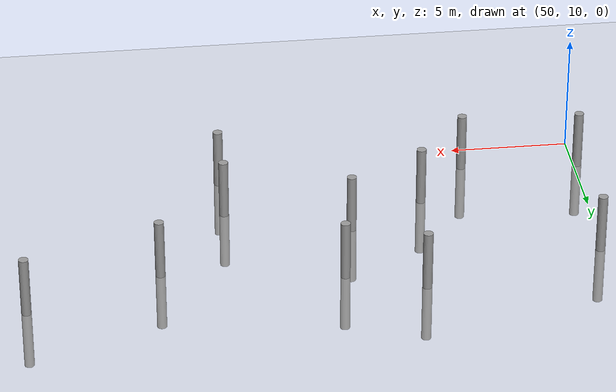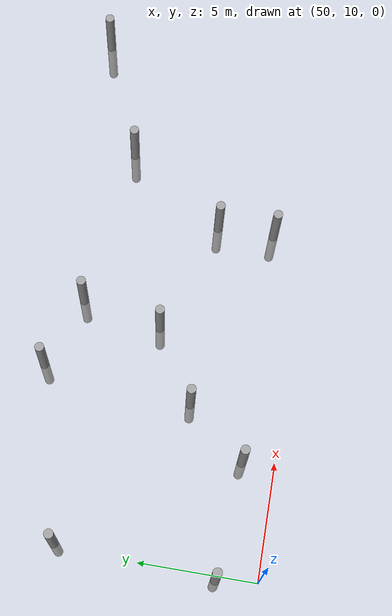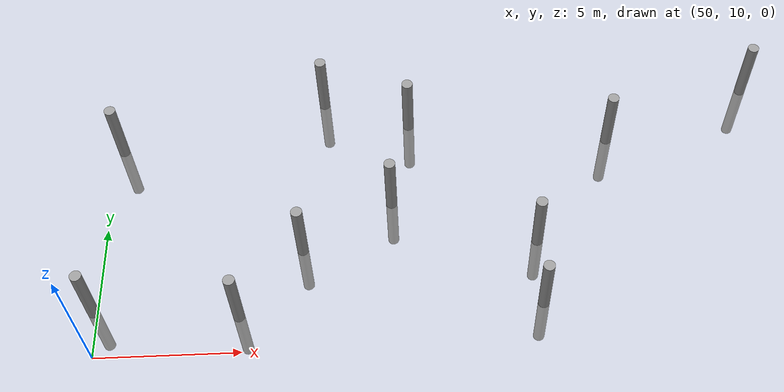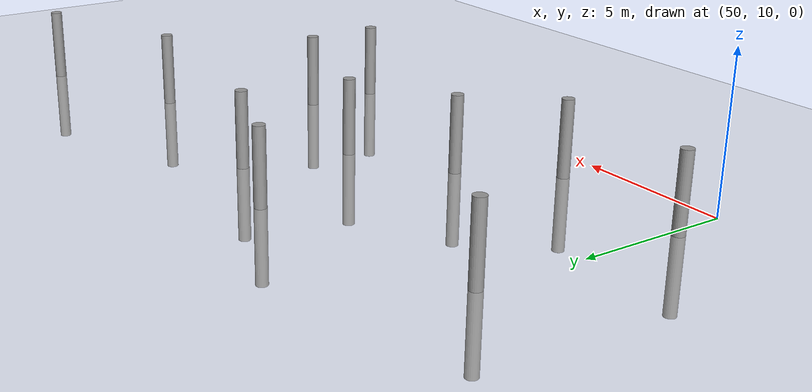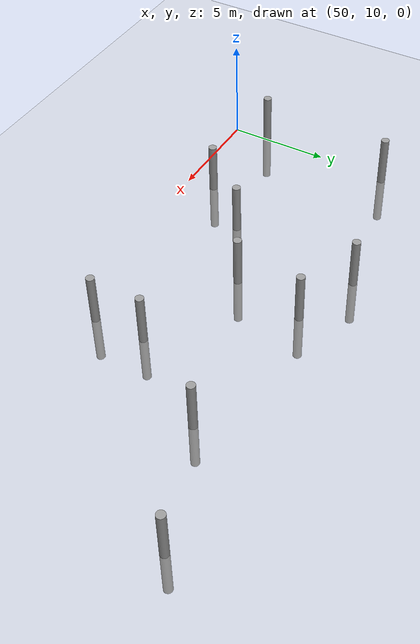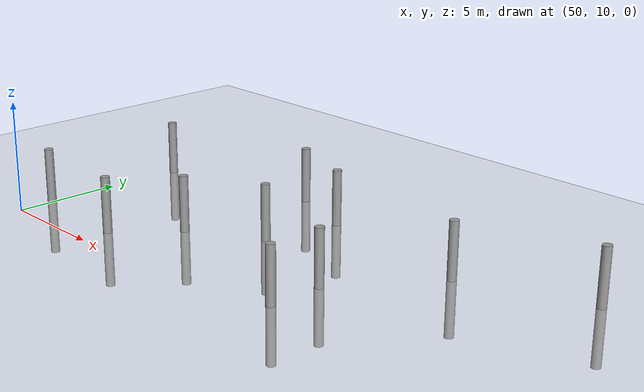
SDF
<sdf version="1.6">
 <world name="default">
  <model name="ground_plane">
   <static>1</static>
   <link name="link">
    <collision name="collision">
     <geometry><plane><normal>0 0 1</normal><size>100 100</size></plane></geometry>
     <surface><friction><ode><mu>100</mu><mu2>50</mu2></ode></friction></surface>
    </collision>
    <visual name="visual">
     <cast_shadows>0</cast_shadows>
     <geometry><plane><normal>0 0 1</normal><size>100 100</size></plane></geometry>
     <material>
      <script><uri>file://media/materials/scripts/gazebo.material</uri><name>Gazebo/Grey</name></script>
     </material>
    </visual>
   </link>
  </model>
  <model name="empty_pillars_3">
   <model name="empty_pillar_clone_13">
    <link name="link">
     <inertial>
      <mass>1</mass>
      <inertia><ixx>0.145833</ixx><ixy>0</ixy><ixz>0</ixz><iyy>0.145833</iyy><iyz>0</iyz><izz>0.125</izz></inertia>
     </inertial>
     <visual name="visual">
      <geometry><cylinder><radius>0.2</radius><length>5</length></cylinder></geometry>
      <material>
       <script><name>Gazebo/Grey</name><uri>file://media/materials/scripts/gazebo.material</uri></script>
       <shader type="vertex"><normal_map>__default__</normal_map></shader>
       <ambient>0.3 0.3 0.3 1</ambient>
       <diffuse>0.7 0.7 0.7 1</diffuse>
       <specular>0.01 0.01 0.01 1</specular>
       <emissive>0 0 0 1</emissive>
      </material>
     </visual>
     <collision name="collision">
      <geometry><cylinder><radius>0.05</radius><length>5</length></cylinder></geometry>
      <surface>
       <friction>
        <ode><mu>1</mu><mu2>1</mu2><fdir1>0 0 0</fdir1><slip1>0</slip1><slip2>0</slip2></ode>
        <torsional>
         <coefficient>1</coefficient>
         <patch_radius>0</patch_radius>
         <surface_radius>0</surface_radius>
         <use_patch_radius>1</use_patch_radius>
         <ode><slip>0</slip></ode>
        </torsional>
       </friction>
       <bounce><restitution_coefficient>0</restitution_coefficient><threshold>1e+06</threshold></bounce>
       <contact>
        <collide_without_contact>0</collide_without_contact>
        <collide_without_contact_bitmask>1</collide_without_contact_bitmask>
        <collide_bitmask>1</collide_bitmask>
        <ode>
         <soft_cfm>0</soft_cfm>
         <soft_erp>0.2</soft_erp>
         <kp>1e+13</kp>
         <kd>1</kd>
         <max_vel>0.01</max_vel>
         <min_depth>0</min_depth>
        </ode>
        <bullet>
         <split_impulse>1</split_impulse>
         <split_impulse_penetration_threshold>-0.01</split_impulse_penetration_threshold>
         <soft_cfm>0</soft_cfm>
         <soft_erp>0.2</soft_erp>
         <kp>1e+13</kp>
         <kd>1</kd>
        </bullet>
       </contact>
      </surface>
     </collision>
    </link>
    <static>0</static>
    <pose>-9.01464 -14.4259 0 0 -0 0</pose>
   </model>
   <model name="empty_pillar_clone_35">
    <link name="link">
     <inertial>
      <mass>1</mass>
      <inertia><ixx>0.145833</ixx><ixy>0</ixy><ixz>0</ixz><iyy>0.145833</iyy><iyz>0</iyz><izz>0.125</izz></inertia>
     </inertial>
     <visual name="visual">
      <geometry><cylinder><radius>0.2</radius><length>5</length></cylinder></geometry>
      <material>
       <script><name>Gazebo/Grey</name><uri>file://media/materials/scripts/gazebo.material</uri></script>
       <shader type="vertex"><normal_map>__default__</normal_map></shader>
       <ambient>0.3 0.3 0.3 1</ambient>
       <diffuse>0.7 0.7 0.7 1</diffuse>
       <specular>0.01 0.01 0.01 1</specular>
       <emissive>0 0 0 1</emissive>
      </material>
     </visual>
     <collision name="collision">
      <geometry><cylinder><radius>0.05</radius><length>5</length></cylinder></geometry>
      <surface>
       <friction>
        <ode><mu>1</mu><mu2>1</mu2><fdir1>0 0 0</fdir1><slip1>0</slip1><slip2>0</slip2></ode>
        <torsional>
         <coefficient>1</coefficient>
         <patch_radius>0</patch_radius>
         <surface_radius>0</surface_radius>
         <use_patch_radius>1</use_patch_radius>
         <ode><slip>0</slip></ode>
        </torsional>
       </friction>
       <bounce><restitution_coefficient>0</restitution_coefficient><threshold>1e+06</threshold></bounce>
       <contact>
        <collide_without_contact>0</collide_without_contact>
        <collide_without_contact_bitmask>1</collide_without_contact_bitmask>
        <collide_bitmask>1</collide_bitmask>
        <ode>
         <soft_cfm>0</soft_cfm>
         <soft_erp>0.2</soft_erp>
         <kp>1e+13</kp>
         <kd>1</kd>
         <max_vel>0.01</max_vel>
         <min_depth>0</min_depth>
        </ode>
        <bullet>
         <split_impulse>1</split_impulse>
         <split_impulse_penetration_threshold>-0.01</split_impulse_penetration_threshold>
         <soft_cfm>0</soft_cfm>
         <soft_erp>0.2</soft_erp>
         <kp>1e+13</kp>
         <kd>1</kd>
        </bullet>
       </contact>
      </surface>
     </collision>
    </link>
    <static>0</static>
    <pose>-19.4431 -17.0281 0 0 -0 0</pose>
   </model>
   <model name="empty_pillar_clone_37">
    <link name="link">
     <inertial>
      <mass>1</mass>
      <inertia><ixx>0.145833</ixx><ixy>0</ixy><ixz>0</ixz><iyy>0.145833</iyy><iyz>0</iyz><izz>0.125</izz></inertia>
     </inertial>
     <visual name="visual">
      <geometry><cylinder><radius>0.2</radius><length>5</length></cylinder></geometry>
      <material>
       <script><name>Gazebo/Grey</name><uri>file://media/materials/scripts/gazebo.material</uri></script>
       <shader type="vertex"><normal_map>__default__</normal_map></shader>
       <ambient>0.3 0.3 0.3 1</ambient>
       <diffuse>0.7 0.7 0.7 1</diffuse>
       <specular>0.01 0.01 0.01 1</specular>
       <emissive>0 0 0 1</emissive>
      </material>
     </visual>
     <collision name="collision">
      <geometry><cylinder><radius>0.05</radius><length>5</length></cylinder></geometry>
      <surface>
       <friction>
        <ode><mu>1</mu><mu2>1</mu2><fdir1>0 0 0</fdir1><slip1>0</slip1><slip2>0</slip2></ode>
        <torsional>
         <coefficient>1</coefficient>
         <patch_radius>0</patch_radius>
         <surface_radius>0</surface_radius>
         <use_patch_radius>1</use_patch_radius>
         <ode><slip>0</slip></ode>
        </torsional>
       </friction>
       <bounce><restitution_coefficient>0</restitution_coefficient><threshold>1e+06</threshold></bounce>
       <contact>
        <collide_without_contact>0</collide_without_contact>
        <collide_without_contact_bitmask>1</collide_without_contact_bitmask>
        <collide_bitmask>1</collide_bitmask>
        <ode>
         <soft_cfm>0</soft_cfm>
         <soft_erp>0.2</soft_erp>
         <kp>1e+13</kp>
         <kd>1</kd>
         <max_vel>0.01</max_vel>
         <min_depth>0</min_depth>
        </ode>
        <bullet>
         <split_impulse>1</split_impulse>
         <split_impulse_penetration_threshold>-0.01</split_impulse_penetration_threshold>
         <soft_cfm>0</soft_cfm>
         <soft_erp>0.2</soft_erp>
         <kp>1e+13</kp>
         <kd>1</kd>
        </bullet>
       </contact>
      </surface>
     </collision>
    </link>
    <static>0</static>
    <pose>-16.6035 -7.98282 0 0 -0 0</pose>
   </model>
   <model name="empty_pillar_clone_39">
    <link name="link">
     <inertial>
      <mass>1</mass>
      <inertia><ixx>0.145833</ixx><ixy>0</ixy><ixz>0</ixz><iyy>0.145833</iyy><iyz>0</iyz><izz>0.125</izz></inertia>
     </inertial>
     <visual name="visual">
      <geometry><cylinder><radius>0.2</radius><length>5</length></cylinder></geometry>
      <material>
       <script><name>Gazebo/Grey</name><uri>file://media/materials/scripts/gazebo.material</uri></script>
       <shader type="vertex"><normal_map>__default__</normal_map></shader>
       <ambient>0.3 0.3 0.3 1</ambient>
       <diffuse>0.7 0.7 0.7 1</diffuse>
       <specular>0.01 0.01 0.01 1</specular>
       <emissive>0 0 0 1</emissive>
      </material>
     </visual>
     <collision name="collision">
      <geometry><cylinder><radius>0.05</radius><length>5</length></cylinder></geometry>
      <surface>
       <friction>
        <ode><mu>1</mu><mu2>1</mu2><fdir1>0 0 0</fdir1><slip1>0</slip1><slip2>0</slip2></ode>
        <torsional>
         <coefficient>1</coefficient>
         <patch_radius>0</patch_radius>
         <surface_radius>0</surface_radius>
         <use_patch_radius>1</use_patch_radius>
         <ode><slip>0</slip></ode>
        </torsional>
       </friction>
       <bounce><restitution_coefficient>0</restitution_coefficient><threshold>1e+06</threshold></bounce>
       <contact>
        <collide_without_contact>0</collide_without_contact>
        <collide_without_contact_bitmask>1</collide_without_contact_bitmask>
        <collide_bitmask>1</collide_bitmask>
        <ode>
         <soft_cfm>0</soft_cfm>
         <soft_erp>0.2</soft_erp>
         <kp>1e+13</kp>
         <kd>1</kd>
         <max_vel>0.01</max_vel>
         <min_depth>0</min_depth>
        </ode>
        <bullet>
         <split_impulse>1</split_impulse>
         <split_impulse_penetration_threshold>-0.01</split_impulse_penetration_threshold>
         <soft_cfm>0</soft_cfm>
         <soft_erp>0.2</soft_erp>
         <kp>1e+13</kp>
         <kd>1</kd>
        </bullet>
       </contact>
      </surface>
     </collision>
    </link>
    <static>0</static>
    <pose>-13.4361 -9.12638 0 0 -0 0</pose>
   </model>
   <model name="empty_pillar_clone_40">
    <link name="link">
     <inertial>
      <mass>1</mass>
      <inertia><ixx>0.145833</ixx><ixy>0</ixy><ixz>0</ixz><iyy>0.145833</iyy><iyz>0</iyz><izz>0.125</izz></inertia>
     </inertial>
     <visual name="visual">
      <geometry><cylinder><radius>0.2</radius><length>5</length></cylinder></geometry>
      <material>
       <script><name>Gazebo/Grey</name><uri>file://media/materials/scripts/gazebo.material</uri></script>
       <shader type="vertex"><normal_map>__default__</normal_map></shader>
       <ambient>0.3 0.3 0.3 1</ambient>
       <diffuse>0.7 0.7 0.7 1</diffuse>
       <specular>0.01 0.01 0.01 1</specular>
       <emissive>0 0 0 1</emissive>
      </material>
     </visual>
     <collision name="collision">
      <geometry><cylinder><radius>0.05</radius><length>5</length></cylinder></geometry>
      <surface>
       <friction>
        <ode><mu>1</mu><mu2>1</mu2><fdir1>0 0 0</fdir1><slip1>0</slip1><slip2>0</slip2></ode>
        <torsional>
         <coefficient>1</coefficient>
         <patch_radius>0</patch_radius>
         <surface_radius>0</surface_radius>
         <use_patch_radius>1</use_patch_radius>
         <ode><slip>0</slip></ode>
        </torsional>
       </friction>
       <bounce><restitution_coefficient>0</restitution_coefficient><threshold>1e+06</threshold></bounce>
       <contact>
        <collide_without_contact>0</collide_without_contact>
        <collide_without_contact_bitmask>1</collide_without_contact_bitmask>
        <collide_bitmask>1</collide_bitmask>
        <ode>
         <soft_cfm>0</soft_cfm>
         <soft_erp>0.2</soft_erp>
         <kp>1e+13</kp>
         <kd>1</kd>
         <max_vel>0.01</max_vel>
         <min_depth>0</min_depth>
        </ode>
        <bullet>
         <split_impulse>1</split_impulse>
         <split_impulse_penetration_threshold>-0.01</split_impulse_penetration_threshold>
         <soft_cfm>0</soft_cfm>
         <soft_erp>0.2</soft_erp>
         <kp>1e+13</kp>
         <kd>1</kd>
        </bullet>
       </contact>
      </surface>
     </collision>
    </link>
    <static>0</static>
    <pose>-17.318 -14.4851 0 0 -0 0</pose>
   </model>
   <model name="empty_pillar_clone_41">
    <link name="link">
     <inertial>
      <mass>1</mass>
      <inertia><ixx>0.145833</ixx><ixy>0</ixy><ixz>0</ixz><iyy>0.145833</iyy><iyz>0</iyz><izz>0.125</izz></inertia>
     </inertial>
     <visual name="visual">
      <geometry><cylinder><radius>0.2</radius><length>5</length></cylinder></geometry>
      <material>
       <script><name>Gazebo/Grey</name><uri>file://media/materials/scripts/gazebo.material</uri></script>
       <shader type="vertex"><normal_map>__default__</normal_map></shader>
       <ambient>0.3 0.3 0.3 1</ambient>
       <diffuse>0.7 0.7 0.7 1</diffuse>
       <specular>0.01 0.01 0.01 1</specular>
       <emissive>0 0 0 1</emissive>
      </material>
     </visual>
     <collision name="collision">
      <geometry><cylinder><radius>0.05</radius><length>5</length></cylinder></geometry>
      <surface>
       <friction>
        <ode><mu>1</mu><mu2>1</mu2><fdir1>0 0 0</fdir1><slip1>0</slip1><slip2>0</slip2></ode>
        <torsional>
         <coefficient>1</coefficient>
         <patch_radius>0</patch_radius>
         <surface_radius>0</surface_radius>
         <use_patch_radius>1</use_patch_radius>
         <ode><slip>0</slip></ode>
        </torsional>
       </friction>
       <bounce><restitution_coefficient>0</restitution_coefficient><threshold>1e+06</threshold></bounce>
       <contact>
        <collide_without_contact>0</collide_without_contact>
        <collide_without_contact_bitmask>1</collide_without_contact_bitmask>
        <collide_bitmask>1</collide_bitmask>
        <ode>
         <soft_cfm>0</soft_cfm>
         <soft_erp>0.2</soft_erp>
         <kp>1e+13</kp>
         <kd>1</kd>
         <max_vel>0.01</max_vel>
         <min_depth>0</min_depth>
        </ode>
        <bullet>
         <split_impulse>1</split_impulse>
         <split_impulse_penetration_threshold>-0.01</split_impulse_penetration_threshold>
         <soft_cfm>0</soft_cfm>
         <soft_erp>0.2</soft_erp>
         <kp>1e+13</kp>
         <kd>1</kd>
        </bullet>
       </contact>
      </surface>
     </collision>
    </link>
    <static>0</static>
    <pose>-14.1448 -12.6326 0 0 -0 0</pose>
   </model>
   <model name="empty_pillar_clone_45">
    <link name="link">
     <inertial>
      <mass>1</mass>
      <inertia><ixx>0.145833</ixx><ixy>0</ixy><ixz>0</ixz><iyy>0.145833</iyy><iyz>0</iyz><izz>0.125</izz></inertia>
     </inertial>
     <visual name="visual">
      <geometry><cylinder><radius>0.2</radius><length>5</length></cylinder></geometry>
      <material>
       <script><name>Gazebo/Grey</name><uri>file://media/materials/scripts/gazebo.material</uri></script>
       <shader type="vertex"><normal_map>__default__</normal_map></shader>
       <ambient>0.3 0.3 0.3 1</ambient>
       <diffuse>0.7 0.7 0.7 1</diffuse>
       <specular>0.01 0.01 0.01 1</specular>
       <emissive>0 0 0 1</emissive>
      </material>
     </visual>
     <collision name="collision">
      <geometry><cylinder><radius>0.05</radius><length>5</length></cylinder></geometry>
      <surface>
       <friction>
        <ode><mu>1</mu><mu2>1</mu2><fdir1>0 0 0</fdir1><slip1>0</slip1><slip2>0</slip2></ode>
        <torsional>
         <coefficient>1</coefficient>
         <patch_radius>0</patch_radius>
         <surface_radius>0</surface_radius>
         <use_patch_radius>1</use_patch_radius>
         <ode><slip>0</slip></ode>
        </torsional>
       </friction>
       <bounce><restitution_coefficient>0</restitution_coefficient><threshold>1e+06</threshold></bounce>
       <contact>
        <collide_without_contact>0</collide_without_contact>
        <collide_without_contact_bitmask>1</collide_without_contact_bitmask>
        <collide_bitmask>1</collide_bitmask>
        <ode>
         <soft_cfm>0</soft_cfm>
         <soft_erp>0.2</soft_erp>
         <kp>1e+13</kp>
         <kd>1</kd>
         <max_vel>0.01</max_vel>
         <min_depth>0</min_depth>
        </ode>
        <bullet>
         <split_impulse>1</split_impulse>
         <split_impulse_penetration_threshold>-0.01</split_impulse_penetration_threshold>
         <soft_cfm>0</soft_cfm>
         <soft_erp>0.2</soft_erp>
         <kp>1e+13</kp>
         <kd>1</kd>
        </bullet>
       </contact>
      </surface>
     </collision>
    </link>
    <static>0</static>
    <pose>-9.01076 -16.9307 0 0 -0 0</pose>
   </model>
   <model name="empty_pillar_clone_47">
    <link name="link">
     <inertial>
      <mass>1</mass>
      <inertia><ixx>0.145833</ixx><ixy>0</ixy><ixz>0</ixz><iyy>0.145833</iyy><iyz>0</iyz><izz>0.125</izz></inertia>
     </inertial>
     <visual name="visual">
      <geometry><cylinder><radius>0.2</radius><length>5</length></cylinder></geometry>
      <material>
       <script><name>Gazebo/Grey</name><uri>file://media/materials/scripts/gazebo.material</uri></script>
       <shader type="vertex"><normal_map>__default__</normal_map></shader>
       <ambient>0.3 0.3 0.3 1</ambient>
       <diffuse>0.7 0.7 0.7 1</diffuse>
       <specular>0.01 0.01 0.01 1</specular>
       <emissive>0 0 0 1</emissive>
      </material>
     </visual>
     <collision name="collision">
      <geometry><cylinder><radius>0.05</radius><length>5</length></cylinder></geometry>
      <surface>
       <friction>
        <ode><mu>1</mu><mu2>1</mu2><fdir1>0 0 0</fdir1><slip1>0</slip1><slip2>0</slip2></ode>
        <torsional>
         <coefficient>1</coefficient>
         <patch_radius>0</patch_radius>
         <surface_radius>0</surface_radius>
         <use_patch_radius>1</use_patch_radius>
         <ode><slip>0</slip></ode>
        </torsional>
       </friction>
       <bounce><restitution_coefficient>0</restitution_coefficient><threshold>1e+06</threshold></bounce>
       <contact>
        <collide_without_contact>0</collide_without_contact>
        <collide_without_contact_bitmask>1</collide_without_contact_bitmask>
        <collide_bitmask>1</collide_bitmask>
        <ode>
         <soft_cfm>0</soft_cfm>
         <soft_erp>0.2</soft_erp>
         <kp>1e+13</kp>
         <kd>1</kd>
         <max_vel>0.01</max_vel>
         <min_depth>0</min_depth>
        </ode>
        <bullet>
         <split_impulse>1</split_impulse>
         <split_impulse_penetration_threshold>-0.01</split_impulse_penetration_threshold>
         <soft_cfm>0</soft_cfm>
         <soft_erp>0.2</soft_erp>
         <kp>1e+13</kp>
         <kd>1</kd>
        </bullet>
       </contact>
      </surface>
     </collision>
    </link>
    <static>0</static>
    <pose>-0.569433 -7.97346 0 0 -0 0</pose>
   </model>
   <model name="empty_pillar_clone_5">
    <link name="link">
     <inertial>
      <mass>1</mass>
      <inertia><ixx>0.145833</ixx><ixy>0</ixy><ixz>0</ixz><iyy>0.145833</iyy><iyz>0</iyz><izz>0.125</izz></inertia>
     </inertial>
     <visual name="visual">
      <geometry><cylinder><radius>0.2</radius><length>5</length></cylinder></geometry>
      <material>
       <script><name>Gazebo/Grey</name><uri>file://media/materials/scripts/gazebo.material</uri></script>
       <shader type="vertex"><normal_map>__default__</normal_map></shader>
       <ambient>0.3 0.3 0.3 1</ambient>
       <diffuse>0.7 0.7 0.7 1</diffuse>
       <specular>0.01 0.01 0.01 1</specular>
       <emissive>0 0 0 1</emissive>
      </material>
     </visual>
     <collision name="collision">
      <geometry><cylinder><radius>0.05</radius><length>5</length></cylinder></geometry>
      <surface>
       <friction>
        <ode><mu>1</mu><mu2>1</mu2><fdir1>0 0 0</fdir1><slip1>0</slip1><slip2>0</slip2></ode>
        <torsional>
         <coefficient>1</coefficient>
         <patch_radius>0</patch_radius>
         <surface_radius>0</surface_radius>
         <use_patch_radius>1</use_patch_radius>
         <ode><slip>0</slip></ode>
        </torsional>
       </friction>
       <bounce><restitution_coefficient>0</restitution_coefficient><threshold>1e+06</threshold></bounce>
       <contact>
        <collide_without_contact>0</collide_without_contact>
        <collide_without_contact_bitmask>1</collide_without_contact_bitmask>
        <collide_bitmask>1</collide_bitmask>
        <ode>
         <soft_cfm>0</soft_cfm>
         <soft_erp>0.2</soft_erp>
         <kp>1e+13</kp>
         <kd>1</kd>
         <max_vel>0.01</max_vel>
         <min_depth>0</min_depth>
        </ode>
        <bullet>
         <split_impulse>1</split_impulse>
         <split_impulse_penetration_threshold>-0.01</split_impulse_penetration_threshold>
         <soft_cfm>0</soft_cfm>
         <soft_erp>0.2</soft_erp>
         <kp>1e+13</kp>
         <kd>1</kd>
        </bullet>
       </contact>
      </surface>
     </collision>
    </link>
    <static>0</static>
    <pose>-6.03595 -10.0932 0 0 -0 0</pose>
   </model>
   <static>0</static>
   <pose>74.2615 28.3982 0 0 -0 0</pose>
  </model>
  <model name="empty_pillars_4">
   <model name="empty_pillar_clone_54">
    <link name="link">
     <inertial>
      <mass>1</mass>
      <inertia><ixx>0.145833</ixx><ixy>0</ixy><ixz>0</ixz><iyy>0.145833</iyy><iyz>0</iyz><izz>0.125</izz></inertia>
     </inertial>
     <visual name="visual">
      <geometry><cylinder><radius>0.2</radius><length>5</length></cylinder></geometry>
      <material>
       <script><name>Gazebo/Grey</name><uri>file://media/materials/scripts/gazebo.material</uri></script>
       <shader type="vertex"><normal_map>__default__</normal_map></shader>
       <ambient>0.3 0.3 0.3 1</ambient>
       <diffuse>0.7 0.7 0.7 1</diffuse>
       <specular>0.01 0.01 0.01 1</specular>
       <emissive>0 0 0 1</emissive>
      </material>
     </visual>
     <collision name="collision">
      <geometry><cylinder><radius>0.05</radius><length>5</length></cylinder></geometry>
      <surface>
       <friction>
        <ode><mu>1</mu><mu2>1</mu2><fdir1>0 0 0</fdir1><slip1>0</slip1><slip2>0</slip2></ode>
        <torsional>
         <coefficient>1</coefficient>
         <patch_radius>0</patch_radius>
         <surface_radius>0</surface_radius>
         <use_patch_radius>1</use_patch_radius>
         <ode><slip>0</slip></ode>
        </torsional>
       </friction>
       <bounce><restitution_coefficient>0</restitution_coefficient><threshold>1e+06</threshold></bounce>
       <contact>
        <collide_without_contact>0</collide_without_contact>
        <collide_without_contact_bitmask>1</collide_without_contact_bitmask>
        <collide_bitmask>1</collide_bitmask>
        <ode>
         <soft_cfm>0</soft_cfm>
         <soft_erp>0.2</soft_erp>
         <kp>1e+13</kp>
         <kd>1</kd>
         <max_vel>0.01</max_vel>
         <min_depth>0</min_depth>
        </ode>
        <bullet>
         <split_impulse>1</split_impulse>
         <split_impulse_penetration_threshold>-0.01</split_impulse_penetration_threshold>
         <soft_cfm>0</soft_cfm>
         <soft_erp>0.2</soft_erp>
         <kp>1e+13</kp>
         <kd>1</kd>
        </bullet>
       </contact>
      </surface>
     </collision>
    </link>
    <static>0</static>
    <pose>24.557 -15.8784 0 0 -0 0</pose>
   </model>
   <model name="empty_pillar_clone_6">
    <link name="link">
     <inertial>
      <mass>1</mass>
      <inertia><ixx>0.145833</ixx><ixy>0</ixy><ixz>0</ixz><iyy>0.145833</iyy><iyz>0</iyz><izz>0.125</izz></inertia>
     </inertial>
     <visual name="visual">
      <geometry><cylinder><radius>0.2</radius><length>5</length></cylinder></geometry>
      <material>
       <script><name>Gazebo/Grey</name><uri>file://media/materials/scripts/gazebo.material</uri></script>
       <shader type="vertex"><normal_map>__default__</normal_map></shader>
       <ambient>0.3 0.3 0.3 1</ambient>
       <diffuse>0.7 0.7 0.7 1</diffuse>
       <specular>0.01 0.01 0.01 1</specular>
       <emissive>0 0 0 1</emissive>
      </material>
     </visual>
     <collision name="collision">
      <geometry><cylinder><radius>0.05</radius><length>5</length></cylinder></geometry>
      <surface>
       <friction>
        <ode><mu>1</mu><mu2>1</mu2><fdir1>0 0 0</fdir1><slip1>0</slip1><slip2>0</slip2></ode>
        <torsional>
         <coefficient>1</coefficient>
         <patch_radius>0</patch_radius>
         <surface_radius>0</surface_radius>
         <use_patch_radius>1</use_patch_radius>
         <ode><slip>0</slip></ode>
        </torsional>
       </friction>
       <bounce><restitution_coefficient>0</restitution_coefficient><threshold>1e+06</threshold></bounce>
       <contact>
        <collide_without_contact>0</collide_without_contact>
        <collide_without_contact_bitmask>1</collide_without_contact_bitmask>
        <collide_bitmask>1</collide_bitmask>
        <ode>
         <soft_cfm>0</soft_cfm>
         <soft_erp>0.2</soft_erp>
         <kp>1e+13</kp>
         <kd>1</kd>
         <max_vel>0.01</max_vel>
         <min_depth>0</min_depth>
        </ode>
        <bullet>
         <split_impulse>1</split_impulse>
         <split_impulse_penetration_threshold>-0.01</split_impulse_penetration_threshold>
         <soft_cfm>0</soft_cfm>
         <soft_erp>0.2</soft_erp>
         <kp>1e+13</kp>
         <kd>1</kd>
        </bullet>
       </contact>
      </surface>
     </collision>
    </link>
    <static>0</static>
    <pose>24.9156 -9.11394 0 0 -0 0</pose>
   </model>
   <static>0</static>
   <pose>25.2837 27.6164 0 0 -0 0</pose>
  </model>
 </world>
</sdf>
